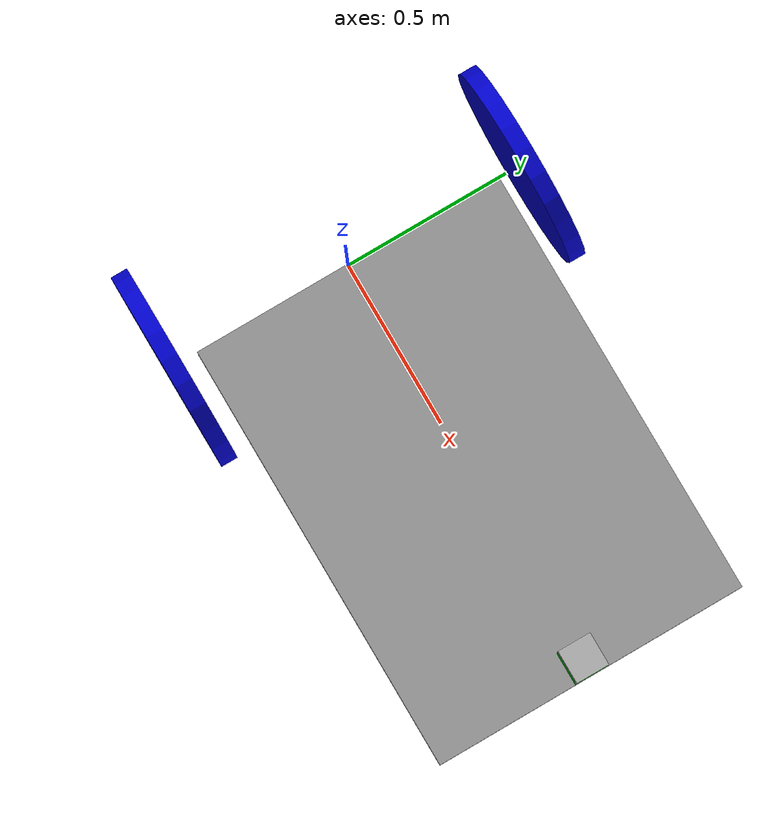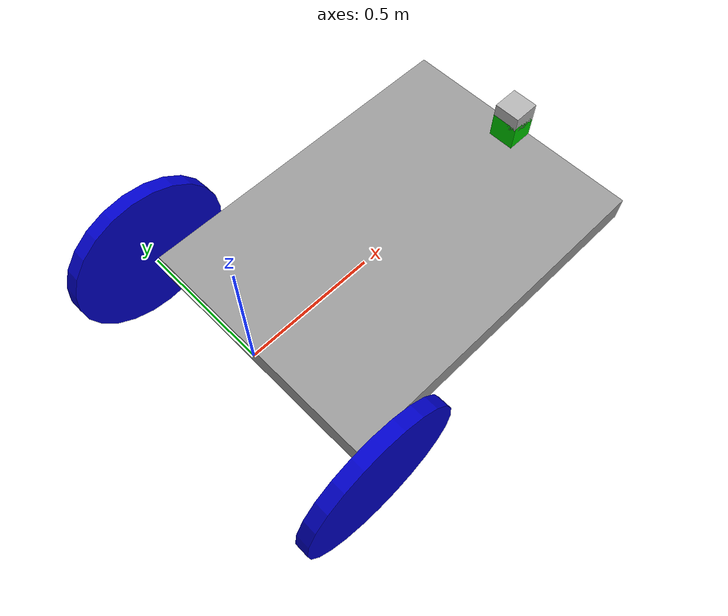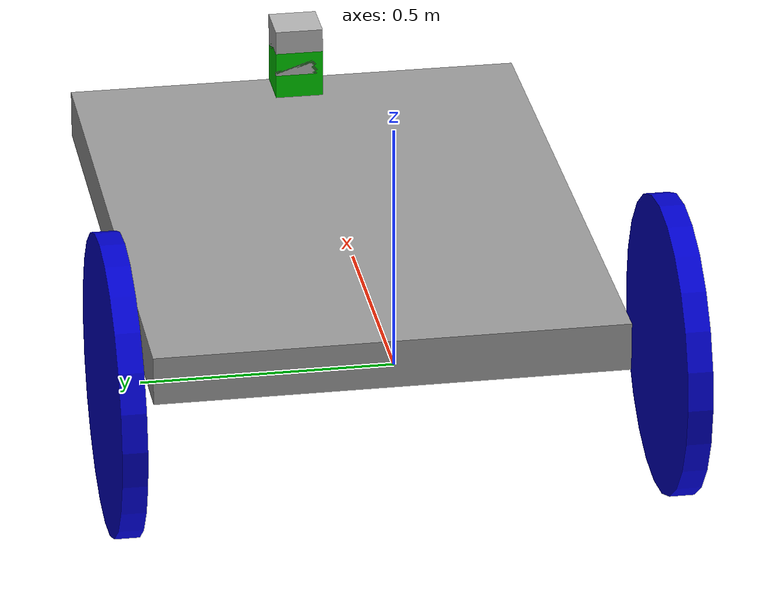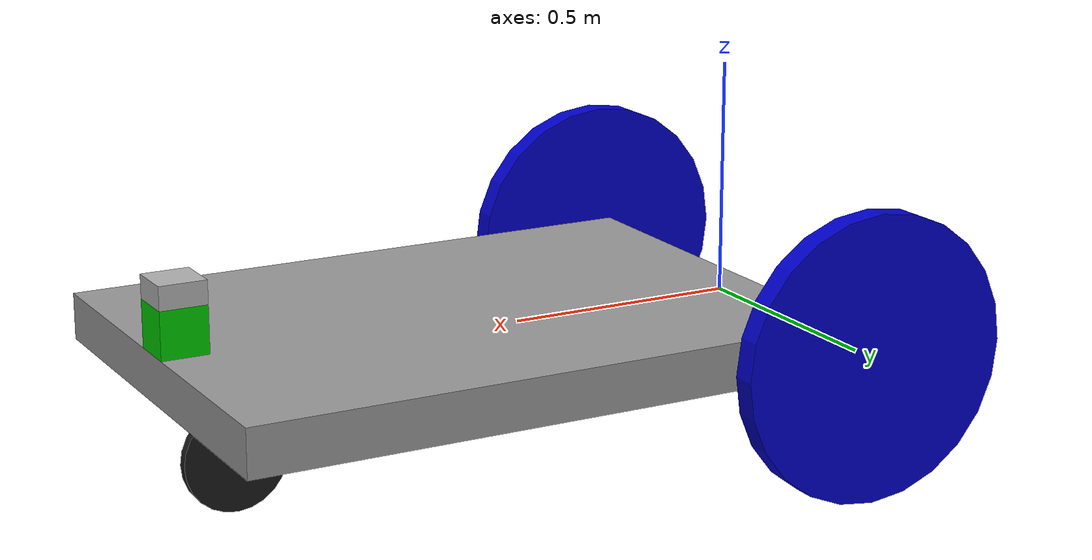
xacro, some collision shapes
<?xml version="1.0"?>

<robot name="myddbot" xmlns:xacro="http://www.ros.org/wiki/xacro">

  <xacro:property name="baseline" value="1.0" />
  <xacro:property name="wheel_radius" value=".3" />
  <xacro:property name="caster_sphere_radius" value="${wheel_radius}" />

  <xacro:property name="wheel_thickness" value="0.05" />
  <xacro:property name="base_length" value="1.3" />
  <xacro:property name="base_height" value="0.1" />

  <xacro:property name="base_mass" value="2.0" />
  <xacro:property name="wheel_mass" value="0.5" />
  <xacro:property name="caster_body_mass" value="0.5" />
  <xacro:property name="caster_wheel_mass" value="0.5" />
  <xacro:property name="caster_body_radius" value="${0.2*wheel_radius}" />
  <xacro:property name="caster_body_length" value="${0.2*wheel_radius}" />
  <xacro:property name="caster_body_ixx" value="${0.5*caster_body_mass*caster_body_radius**2}" />
  <xacro:property name="caster_body_iyy" value="${caster_body_mass*(3*caster_body_radius**2+caster_body_length**2)/12.}" />
  <xacro:property name="caster_wheel_radius" value="${0.5*(wheel_radius-0.5*caster_body_length-0.5*base_height)}" />
  <xacro:property name="caster_wheel_length" value="${0.2*caster_wheel_radius}" />
  <xacro:property name="caster_wheel_ixx" value="${0.5*caster_wheel_mass*caster_wheel_radius**2}" />
  <xacro:property name="caster_wheel_iyy" value="${caster_wheel_mass*(3*caster_wheel_radius**2+caster_wheel_length**2)/12.}" />

  <xacro:property name="camera_size" value="0.1" />
  <xacro:property name="camera_mass" value="0.1" />

  <xacro:property name="lrf_size" value="0.1" />
  <xacro:property name="lrf_mass" value="0.1" />

  <xacro:property name="pi_div_2" value="${2*atan(1)}" />

  <xacro:property name="update_rate_diff_drive" value="100" />

  <material name="red">
    <color rgba="0.8 0.0 0.0 1.0" />
  </material>
  <material name="green">
    <color rgba="0.0 0.8 0.0 1.0" />
  </material>
  <material name="blue">
    <color rgba="0.0 0.0 0.8 1.0" />
  </material>
  <material name="grey">
    <color rgba="0.6 0.6 0.6 1" />
  </material>
  <material name="black">
    <color rgba="0.1 0.1 0.1 1" />
  </material>

  <!-- wheel rotates about its z vector -->
  <xacro:macro name="wheel" params="name radius width mass parent place orient">

    <xacro:property name="ixx" value="${0.5*mass*radius**2}" />
    <xacro:property name="iyy" value="${mass*(3*radius**2+width**2)/12.}" />

    <link name="${name}">

      <visual>
	<origin xyz="0 0 0" rpy="0 0 0" />
	<geometry>
	  <cylinder length="${width}" radius="${radius}" />
	</geometry>
	<material name="blue" />
      </visual>

      <inertial>
	<origin xyz="0 0 0" rpy="0 0 0" />
	<mass value="${mass}" />
	<inertia ixx="${ixx}" ixy="0.0" ixz="0.0"
		 iyy="${iyy}" iyz="0.0" izz="${iyy}" />
      </inertial>

      <collision>
	<origin xyz="0 0 0" rpy="0 0 0" />
	<geometry>
	  <cylinder length="${width}" radius="${radius}" />
	</geometry>
      </collision>

    </link>

    <joint name="${parent + '_' + name + '_joint'}" type="continuous">
      <parent link="${parent}" />
      <child link="${name}"/>
      <origin xyz="${place}" rpy="${orient}" />
      <axis xyz="0.0 0.0 1.0" rpy="0 0 0"/>
      <limit effort="100" velocity="100" />
      <dynamics damping="0.0" friction="0.0"/>
    </joint>

  </xacro:macro>

  <!-- see: https://www.ros.org/reps/rep-0120.html -->

  <link name="base_link">
      <visual name="base_link_visual">
      <geometry>
	<box size="${base_length} ${baseline-wheel_thickness} ${base_height}" />
      </geometry>
      <origin xyz="${base_length/2} 0 0" rpy="0 0 0" />
      <material name="grey" />
    </visual>
    <collision>
      <geometry>
	<box size="${base_length} ${baseline-wheel_thickness} ${base_height}" />
      </geometry>
      <origin xyz="${base_length/2} 0 0" rpy="0 0 0" />
    </collision>
    <inertial>
      <mass value="${base_mass}" />
      <inertia ixx="${(1/12)*base_mass*(baseline**2+base_height**2)}" ixy="0.0" ixz="0.0"
	       iyy="${(1/12)*base_mass*(base_length**2+base_height**2)}" iyz="0.0"
	       izz="${(1/12)*base_mass*(base_length**2+baseline**2)}" />
      <origin xyz="${base_length/2} 0 0" rpy="0 0 0" />
    </inertial>
  </link>

  <link name="base_footprint" />

  <joint name="base_joint" type="fixed">
    <origin xyz="0 0 ${-wheel_radius}" rpy="0 0 0" />
    <parent link="base_link" />
    <child link="base_footprint" />
  </joint>

  <xacro:wheel name="wheel_left" radius="${wheel_radius}" width="${wheel_thickness}"
	       mass="${wheel_mass}"
	       parent="base_link"
	       place="0.0 ${1.1*baseline/2} 0"
	       orient="${-pi_div_2} 0 0" />

  <xacro:wheel name="wheel_right" radius="${wheel_radius}" width="${wheel_thickness}"
	       mass="${wheel_mass}"
	       parent="base_link"
	       place="0.0 ${-1.1*baseline/2} 0"
	       orient="${-pi_div_2} 0 0" />

  <link name="caster_body">
    <visual>
      <geometry>
	<cylinder length="${caster_body_length}" radius="${caster_body_radius}" />
      </geometry>
      <material name="black" />
    </visual>
    <!-- caster wheel goes through caster body so don't put collision object here -->
    <inertial>
      <origin xyz="0 0 0" rpy="0 0 0" />
      <mass value="${caster_body_mass}" />
      <inertia ixx="${caster_body_ixx}" ixy="0.0" ixz="0.0"
	       iyy="${caster_body_iyy}" iyz="0.0" izz="${caster_body_iyy}" />
    </inertial>
  </link>
  <joint name="base_link_caster_body_joint" type="continuous">
    <axis xyz="0 0 1" />
    <origin xyz="${base_length-2*caster_body_radius} 0 ${-base_height/2-caster_body_length/2}" rpy="0 0 0"/>
    <parent link="base_link"/>
    <child link="caster_body"/>
  </joint>

  <link name="caster_wheel">
    <visual>
      <geometry>
	<cylinder length="${caster_wheel_length}" radius="${caster_wheel_radius}" />
      </geometry>
      <material name="black" />
    </visual>
    <collision>
      <geometry>
	<cylinder length="${caster_wheel_length}" radius="${caster_wheel_radius}" />
      </geometry>
    </collision>
    <inertial>
      <origin xyz="0 0 0" rpy="0 0 0" />
      <mass value="${caster_wheel_mass}" />
      <inertia ixx="${caster_wheel_ixx}" ixy="0.0" ixz="0.0"
	       iyy="${caster_wheel_iyy}" iyz="0.0" izz="${caster_wheel_iyy}" />
    </inertial>
  </link>
  <joint name="caster_body_caster_wheel_joint" type="continuous">
    <axis xyz="0 0 1" />
    <origin xyz="${-0.7*caster_body_radius} 0 ${-caster_wheel_radius}" rpy="${-pi_div_2} 0 0"/>
    <parent link="caster_body"/>
    <child link="caster_wheel"/>
  </joint>

  <link name="camera1">
    <visual>
      <origin xyz="0 0 0" rpy="0 0 0"/>
      <geometry>
        <box size="${camera_size} ${camera_size} ${camera_size}"/>
      </geometry>
      <material name="green"/>
    </visual>
    <inertial>
      <mass value="${camera_mass}" />
      <origin xyz="0 0 0" rpy="0 0 0"/>
      <inertia ixx="${(1/12)*camera_mass*(camera_size**2+camera_size**2)}"
	       iyy="${(1/12)*camera_mass*(camera_size**2+camera_size**2)}"
	       izz="${(1/12)*camera_mass*(camera_size**2+camera_size**2)}"
	       ixy="0" ixz="0" iyz="0" />
    </inertial>
    <collision>
      <origin xyz="0 0 0" rpy="0 0 0"/>
      <geometry>
        <box size="${camera_size} ${camera_size} ${camera_size}"/>
      </geometry>
    </collision>
  </link>

  <joint name="base_link_camera1_joint" type="fixed">
    <axis xyz="0 1 0" />
    <origin xyz="${base_length-camera_size/2} 0 ${base_height/2+camera_size/2}" rpy="0 0 0"/>
    <parent link="base_link"/>
    <child link="camera1" />
  </joint>

  <!-- Hokuyo Laser Range Finder (LRF) -->
  <link name="laser_link">
    <visual>
      <origin xyz="0 0 0" rpy="0 0 0"/>
      <geometry>
        <mesh filename="package://myddbot/model/hokuyo.dae"/>
      </geometry>
    </visual>

    <inertial>
      <mass value="${lrf_mass}" />
      <origin xyz="0 0 0" rpy="0 0 0"/>
      <inertia ixx="${(1/12)*lrf_mass*(lrf_size**2+lrf_size**2)}"
	       iyy="${(1/12)*lrf_mass*(lrf_size**2+lrf_size**2)}"
	       izz="${(1/12)*lrf_mass*(lrf_size**2+lrf_size**2)}"
	       ixy="0" ixz="0" iyz="0" />
    </inertial>
    <collision>
      <origin xyz="0 0 0" rpy="0 0 0"/>
      <geometry>
	<box size="${lrf_size} ${lrf_size} ${lrf_size}"/>
      </geometry>
    </collision>

  </link>

  <joint name="base_link_laser_link_joint" type="fixed">
    <axis xyz="0 1 0" />
    <origin xyz="${base_length-camera_size/2} 0 ${base_height/2+camera_size}" rpy="0 0 0"/>
    <parent link="base_link"/>
    <child link="laser_link"/>
  </joint>

  <!-- IMU -->

  <!-- Gazebo plugins -->
  <gazebo reference="base_link">
      <material>Gazebo/Gray</material>
  </gazebo>

  <gazebo reference="caster_body">
      <material>Gazebo/Black</material>
  </gazebo>
  <gazebo reference="caster_wheel">
      <material>Gazebo/Black</material>
  </gazebo>

  <gazebo reference="wheel_left">
    <material>Gazebo/Blue</material>
  </gazebo>

  <gazebo reference="wheel_right">
    <material>Gazebo/Blue</material>
  </gazebo>

  <gazebo>
    <plugin name="differential_drive_controller" filename="libgazebo_ros_diff_drive.so">
      <legacyMode>false</legacyMode>
      <alwaysOn>true</alwaysOn>
      <updateRate>${update_rate_diff_drive}</updateRate>
      <leftJoint>base_link_wheel_left_joint</leftJoint>
      <rightJoint>base_link_wheel_right_joint</rightJoint>
      <wheelSeparation>${baseline}</wheelSeparation>
      <wheelDiameter>${2*wheel_radius}</wheelDiameter>
      <wheelTorque>20</wheelTorque>
      <commandTopic>cmd_vel</commandTopic>
      <odometryTopic>odom</odometryTopic>
      <odometryFrame>odom</odometryFrame>
      <robotBaseFrame>base_link</robotBaseFrame>
      <!-- Set to true to publish transforms for the wheel links, defaults to false -->
      <publishWheelTF>false</publishWheelTF>
      <!-- Set to true to publish transforms for the odometry, defaults to true -->
      <publishOdom>true</publishOdom>
      <!-- Set to true to publish sensor_msgs/JointState on /joint_states for the wheel joints, defaults to false -->
      <publishWheelJointState>false</publishWheelJointState>
    </plugin>
  </gazebo>

  <gazebo reference="camera1">
    <material>Gazebo/Green</material>
    <sensor type="camera" name="camera1_sensor">
      <update_rate>30.0</update_rate>
      <camera name="head">
        <horizontal_fov>1.3962634</horizontal_fov>
        <image>
          <width>800</width>
          <height>800</height>
          <format>R8G8B8</format>
        </image>
        <clip>
          <near>0.02</near>
          <far>300</far>
        </clip>
      </camera>
      <plugin name="camera_controller" filename="libgazebo_ros_camera.so">
        <alwaysOn>true</alwaysOn>
        <updateRate>0.0</updateRate>
        <cameraName>camera1</cameraName>
        <imageTopicName>image_raw</imageTopicName>
        <cameraInfoTopicName>camera_info</cameraInfoTopicName>
        <frameName>camera1</frameName>
        <hackBaseline>0.07</hackBaseline>
        <distortionK1>0.0</distortionK1>
        <distortionK2>0.0</distortionK2>
        <distortionK3>0.0</distortionK3>
        <distortionT1>0.0</distortionT1>
        <distortionT2>0.0</distortionT2>
      </plugin>
    </sensor>
  </gazebo>

  <!-- hokuyo -->
  <gazebo reference="laser_link">
    <sensor type="ray" name="laser_link_sensor">
      <pose>0 0 0 0 0 0</pose>
      <visualize>false</visualize>
      <update_rate>40</update_rate>
      <ray>
        <scan>
          <horizontal>
            <samples>720</samples>
            <resolution>1</resolution>
            <min_angle>-1.570796</min_angle>
            <max_angle>1.570796</max_angle>
          </horizontal>
        </scan>
        <range>
          <min>0.10</min>
          <max>30.0</max>
          <resolution>0.01</resolution>
        </range>
        <noise>
          <type>gaussian</type>
          <mean>0.0</mean>
          <stddev>0.01</stddev>
        </noise>
      </ray>
      <plugin name="gazebo_ros_head_hokuyo_controller" filename="libgazebo_ros_laser.so">
        <topicName>/scan</topicName>
        <frameName>laser_link</frameName>
      </plugin>
    </sensor>
  </gazebo>

  <!-- http://wiki.ros.org/urdf/Tutorials/Using%20a%20URDF%20in%20Gazebo -->

</robot>
